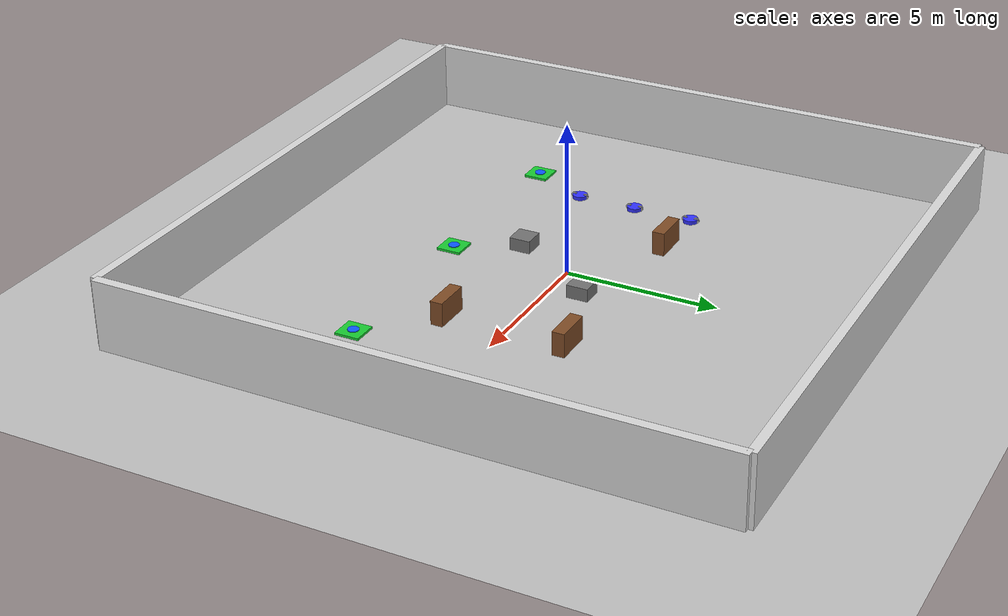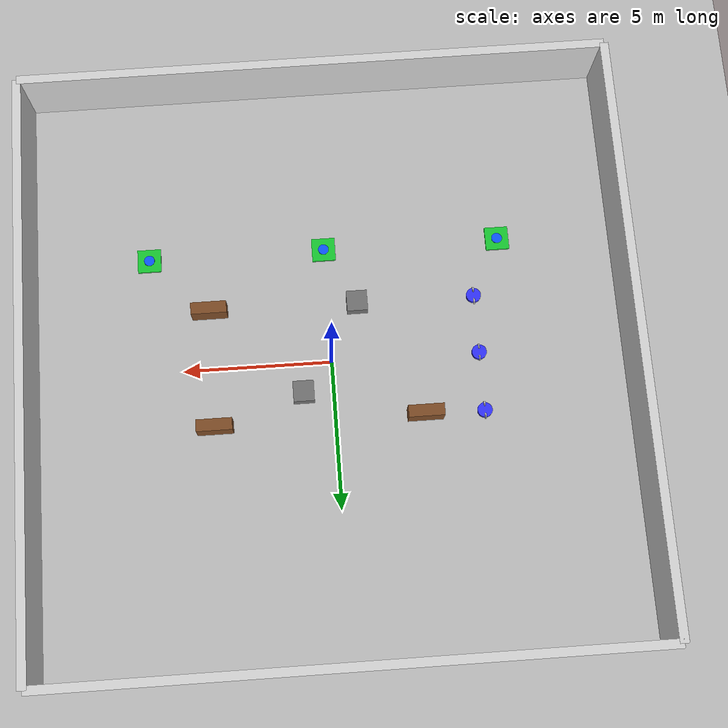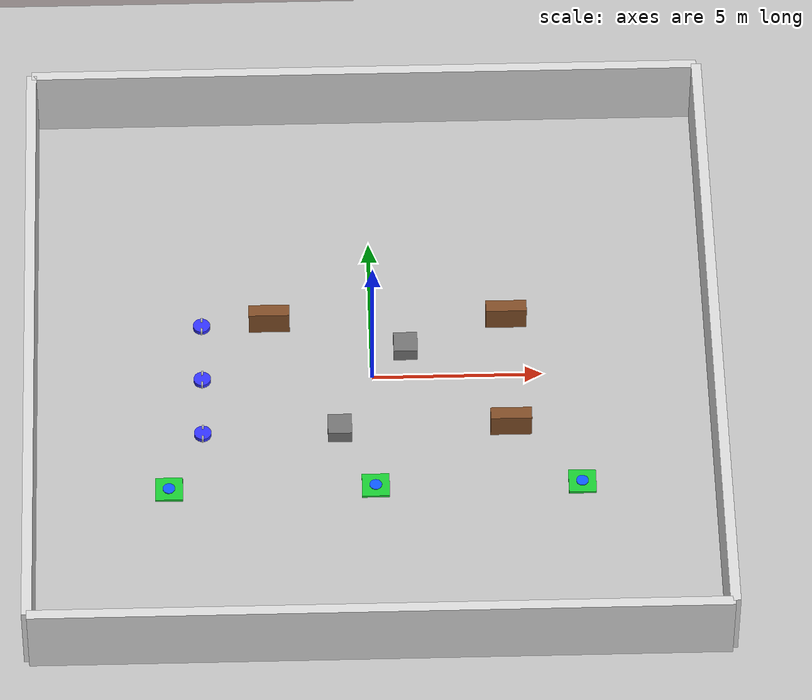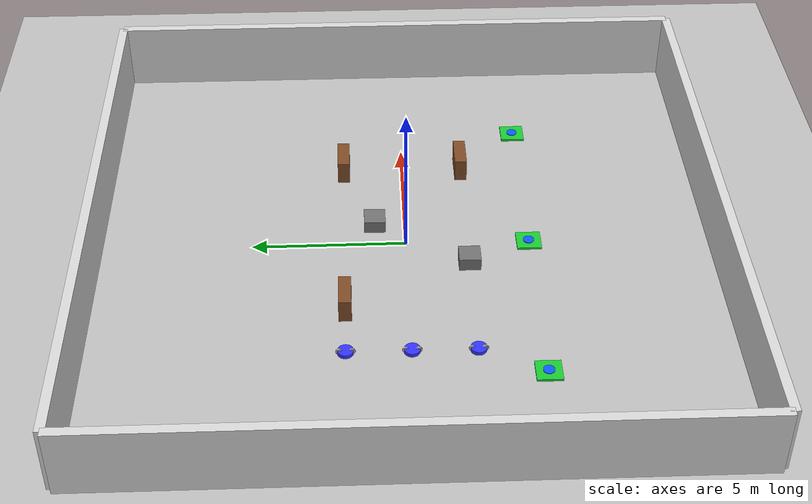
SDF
<?xml version="1.0"?>
<sdf version="1.10">
  <world name="smart_university_world">

    <plugin filename="gz-sim-physics-system" name="gz::sim::systems::Physics"/>
    <plugin filename="gz-sim-user-commands-system" name="gz::sim::systems::UserCommands"/>
    <plugin filename="gz-sim-scene-broadcaster-system" name="gz::sim::systems::SceneBroadcaster"/>
    <plugin filename="gz-sim-sensors-system" name="gz::sim::systems::Sensors">
      <render_engine>ogre2</render_engine>
    </plugin>

    <gravity>0 0 -9.8</gravity>
    <magnetic_field>0 0 0</magnetic_field>
    <atmosphere type="adiabatic"/>

    <scene>
      <ambient>0.55 0.55 0.55 1</ambient>
      <background>0.8 0.85 0.9 1</background>
      <shadows>true</shadows>
    </scene>

    <light name="sun" type="directional">
      <pose>0 0 10 0 0 0</pose>
      <cast_shadows>true</cast_shadows>
      <intensity>1.0</intensity>
      <direction>-0.5 0.2 -0.9</direction>
      <diffuse>0.8 0.8 0.8 1</diffuse>
      <specular>0.2 0.2 0.2 1</specular>
    </light>

    <model name="ground">
      <static>true</static>
      <pose>0 0 0 0 0 0</pose>
      <link name="ground_link">
        <collision name="ground_collision">
          <geometry>
            <plane>
              <normal>0 0 1</normal>
              <size>20 20</size>
            </plane>
          </geometry>
        </collision>
        <visual name="ground_visual">
          <geometry>
            <plane>
              <normal>0 0 1</normal>
              <size>20 20</size>
            </plane>
          </geometry>
          <material>
            <diffuse>0.75 0.75 0.75 1</diffuse>
            <ambient>0.75 0.75 0.75 1</ambient>
          </material>
        </visual>
      </link>
    </model>

    <!-- Pareti ambiente -->
    <include>
      <uri>model://smart_wall</uri>
      <name>wall_north</name>
      <pose>0 10 1 0 0 0</pose>
    </include>

    <include>
      <uri>model://smart_wall</uri>
      <name>wall_south</name>
      <pose>0 -10 1 0 0 0</pose>
    </include>

    <include>
      <uri>model://smart_wall</uri>
      <name>wall_east</name>
      <pose>10 0 1 0 0 1.5708</pose>
    </include>

    <include>
      <uri>model://smart_wall</uri>
      <name>wall_west</name>
      <pose>-10 0 1 0 0 1.5708</pose>
    </include>

    <!-- Scaffali: lo stato dirty/clean è gestito dal plugin globale -->
    <include>
      <uri>model://smart_shelf</uri>
      <name>shelf_1</name>
      <pose>4 2 0 0 0 0</pose>
    </include>

    <include>
      <uri>model://smart_shelf</uri>
      <name>shelf_2</name>
      <pose>4 -2 0 0 0 0</pose>
    </include>

    <include>
      <uri>model://smart_shelf</uri>
      <name>shelf_3</name>
      <pose>-3 2 0 0 0 0</pose>
    </include>

    <!-- Punti di ricarica -->
    <include>
      <uri>model://smart_charger</uri>
      <name>charger_1</name>
      <pose>-6 -4 0 0 0 0</pose>
    </include>

    <include>
      <uri>model://smart_charger</uri>
      <name>charger_2</name>
      <pose>0 -4 0 0 0 0</pose>
    </include>

    <include>
      <uri>model://smart_charger</uri>
      <name>charger_3</name>
      <pose>6 -4 0 0 0 0</pose>
    </include>

    <!-- Ostacoli dinamici/fissi opzionali -->
    <include>
      <uri>model://smart_obstacle</uri>
      <name>obstacle_1</name>
      <pose>1 1 0 0 0 0</pose>
    </include>

    <include>
      <uri>model://smart_obstacle</uri>
      <name>obstacle_2</name>
      <pose>-1 -2 0 0 0 0</pose>
    </include>

    <!-- Robot 1 -->
    <include>
      <uri>model://smart_cleaner_robot</uri>
      <name>robot_1</name>
      <pose>-5 0 0 0 0 0</pose>
    </include>

    <!-- Robot 2 -->
    <include>
      <uri>model://smart_cleaner_robot</uri>
      <name>robot_2</name>
      <pose>-5 2 0 0 0 0</pose>
    </include>

    <!-- Robot 3 -->
    <include>
      <uri>model://smart_cleaner_robot</uri>
      <name>robot_3</name>
      <pose>-5 -2 0 0 0 0</pose>
    </include>

  </world>
</sdf>

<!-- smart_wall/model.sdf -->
<sdf version="1.10">
  <model name="smart_wall">

    <static>true</static>

    <link name="wall_link">

      <!-- Collisione -->
      <collision name="collision">
        <geometry>
          <box>
            <size>20 0.3 2.5</size>
          </box>
        </geometry>
      </collision>

      <!-- Visual -->
      <visual name="visual">
        <geometry>
          <box>
            <size>20 0.3 2.5</size>
          </box>
        </geometry>
        <material>
          <ambient>0.7 0.7 0.7 1</ambient>
          <diffuse>0.85 0.85 0.85 1</diffuse>
        </material>
      </visual>

      <!-- Inerzia -->
      <inertial>
        <mass>50.0</mass>
        <inertia>
          <ixx>5</ixx>
          <iyy>5</iyy>
          <izz>5</izz>
          <ixy>0</ixy>
          <ixz>0</ixz>
          <iyz>0</iyz>
        </inertia>
      </inertial>

    </link>

  </model>
</sdf>

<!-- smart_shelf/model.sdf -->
<sdf version="1.10">
  <model name="smart_shelf">

    <static>true</static>

    <link name="shelf_link">

      <!-- Collisione (importante per evitare robot attraversino) -->
      <collision name="collision">
        <geometry>
          <box>
            <size>1.2 0.4 1.5</size>
          </box>
        </geometry>
      </collision>

      <!-- Visual -->
      <visual name="visual">
        <geometry>
          <box>
            <size>1.2 0.4 1.5</size>
          </box>
        </geometry>
        <material>
          <ambient>0.4 0.25 0.1 1</ambient>
          <diffuse>0.5 0.3 0.15 1</diffuse>
        </material>
      </visual>

      <!-- Inerzia (serve anche se statico per evitare warning) -->
      <inertial>
        <mass>10.0</mass>
        <inertia>
          <ixx>1</ixx>
          <iyy>1</iyy>
          <izz>1</izz>
          <ixy>0</ixy>
          <ixz>0</ixz>
          <iyz>0</iyz>
        </inertia>
      </inertial>

    </link>

  </model>
</sdf>

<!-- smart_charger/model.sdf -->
<sdf version="1.10">
  <model name="smart_charger">

    <static>true</static>

    <link name="charger_link">

      <collision name="collision">
        <geometry>
          <box>
            <size>0.8 0.8 0.1</size>
          </box>
        </geometry>
      </collision>

      <visual name="base_visual">
        <geometry>
          <box>
            <size>0.8 0.8 0.1</size>
          </box>
        </geometry>
        <material>
          <ambient>0.05 0.45 0.1 1</ambient>
          <diffuse>0.1 0.8 0.2 1</diffuse>
        </material>
      </visual>

      <visual name="center_marker">
        <pose>0 0 0.06 0 0 0</pose>
        <geometry>
          <cylinder>
            <radius>0.18</radius>
            <length>0.03</length>
          </cylinder>
        </geometry>
        <material>
          <ambient>0.02 0.2 0.8 1</ambient>
          <diffuse>0.05 0.35 1.0 1</diffuse>
        </material>
      </visual>

      <inertial>
        <mass>5.0</mass>
        <inertia>
          <ixx>1</ixx>
          <iyy>1</iyy>
          <izz>1</izz>
          <ixy>0</ixy>
          <ixz>0</ixz>
          <iyz>0</iyz>
        </inertia>
      </inertial>

    </link>

  </model>
</sdf>

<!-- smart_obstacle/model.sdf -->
<sdf version="1.10">
  <model name="smart_obstacle">

    <static>true</static>

    <link name="obstacle_link">

      <collision name="collision">
        <geometry>
          <box>
            <size>0.7 0.7 0.8</size>
          </box>
        </geometry>
      </collision>

      <visual name="visual">
        <geometry>
          <box>
            <size>0.7 0.7 0.8</size>
          </box>
        </geometry>
        <material>
          <ambient>0.35 0.35 0.35 1</ambient>
          <diffuse>0.45 0.45 0.45 1</diffuse>
        </material>
      </visual>

      <inertial>
        <mass>8.0</mass>
        <inertia>
          <ixx>1</ixx>
          <iyy>1</iyy>
          <izz>1</izz>
          <ixy>0</ixy>
          <ixz>0</ixz>
          <iyz>0</iyz>
        </inertia>
      </inertial>

    </link>

  </model>
</sdf>

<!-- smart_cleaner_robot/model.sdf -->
<sdf version="1.10">
  <model name="smart_cleaner_robot">

    <pose>0 0 0.15 0 0 0</pose>

    <!-- BASE -->
    <link name="base_link">

      <inertial>
        <mass>5.0</mass>
        <inertia>
          <ixx>0.1</ixx>
          <iyy>0.1</iyy>
          <izz>0.1</izz>
          <ixy>0</ixy>
          <ixz>0</ixz>
          <iyz>0</iyz>
        </inertia>
      </inertial>

      <collision name="collision">
        <geometry>
          <cylinder>
            <radius>0.25</radius>
            <length>0.2</length>
          </cylinder>
        </geometry>
      </collision>

      <visual name="visual">
        <geometry>
          <cylinder>
            <radius>0.25</radius>
            <length>0.2</length>
          </cylinder>
        </geometry>
        <material>
          <ambient>0.1 0.1 0.8 1</ambient>
          <diffuse>0.2 0.2 1.0 1</diffuse>
        </material>
      </visual>

      <!-- LIDAR -->
      <sensor name="lidar" type="gpu_lidar">
        <pose>0 0 0.2 0 0 0</pose>
        <topic>scan</topic>
        <update_rate>10</update_rate>

        <ray>
          <scan>
            <horizontal>
              <samples>360</samples>
              <min_angle>-3.14</min_angle>
              <max_angle>3.14</max_angle>
            </horizontal>
          </scan>
          <range>
            <min>0.12</min>
            <max>8.0</max>
            <resolution>0.01</resolution>
          </range>
        </ray>

        <always_on>true</always_on>
        <visualize>true</visualize>
      </sensor>

    </link>

    <!-- RUOTA SINISTRA -->
    <link name="left_wheel">
      <pose>0 0.2 0.05 0 1.5708 0</pose>

      <collision name="collision">
        <geometry>
          <cylinder>
            <radius>0.1</radius>
            <length>0.05</length>
          </cylinder>
        </geometry>
      </collision>

      <visual name="visual">
        <geometry>
          <cylinder>
            <radius>0.1</radius>
            <length>0.05</length>
          </cylinder>
        </geometry>
      </visual>
    </link>

    <!-- RUOTA DESTRA -->
    <link name="right_wheel">
      <pose>0 -0.2 0.05 0 1.5708 0</pose>

      <collision name="collision">
        <geometry>
          <cylinder>
            <radius>0.1</radius>
            <length>0.05</length>
          </cylinder>
        </geometry>
      </collision>

      <visual name="visual">
        <geometry>
          <cylinder>
            <radius>0.1</radius>
            <length>0.05</length>
          </cylinder>
        </geometry>
      </visual>
    </link>

    <!-- JOINTS -->
    <joint name="left_wheel_joint" type="revolute">
      <parent>base_link</parent>
      <child>left_wheel</child>
      <axis>
        <xyz>0 1 0</xyz>
      </axis>
    </joint>

    <joint name="right_wheel_joint" type="revolute">
      <parent>base_link</parent>
      <child>right_wheel</child>
      <axis>
        <xyz>0 1 0</xyz>
      </axis>
    </joint>

    <!-- DIFF DRIVE -->
    <plugin filename="gz-sim-diff-drive-system"
            name="gz::sim::systems::DiffDrive">

      <left_joint>left_wheel_joint</left_joint>
      <right_joint>right_wheel_joint</right_joint>

      <wheel_separation>0.4</wheel_separation>
      <wheel_radius>0.1</wheel_radius>

      <topic>cmd_vel</topic>
      <odom_topic>odom</odom_topic>

    </plugin>

  </model>
</sdf>
